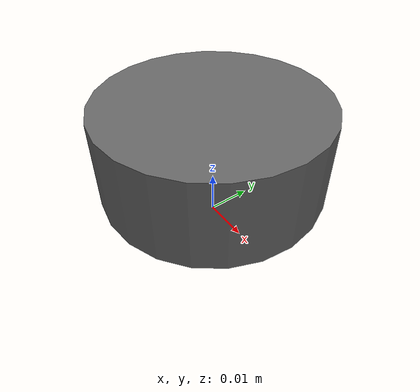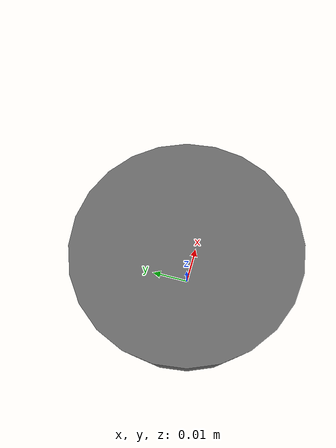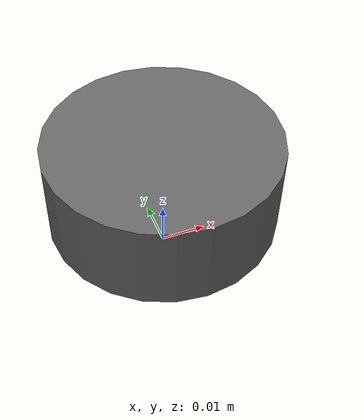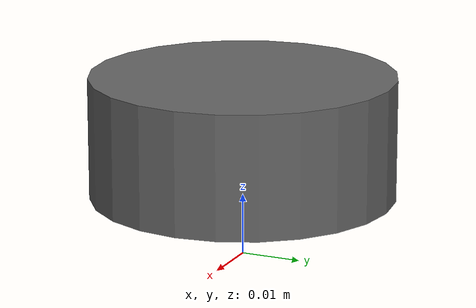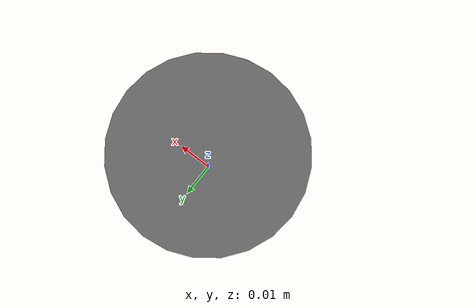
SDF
<?xml version='1.0'?>
<sdf version='1.9'>
  <model name='downward_camera'>
    <pose>0 0 0 0 0 0</pose>
    <self_collide>false</self_collide>
    <static>false</static>
    <link name='camera_link'>
      <inertial>
        <pose>0.03 0.03 0.03 0 0 0</pose>
        <mass>0.050</mass>
        <inertia>
          <ixx>0.00004</ixx>
          <ixy>0</ixy>
          <ixz>0</ixz>
          <iyy>0.00004</iyy>
          <iyz>0</iyz>
          <izz>0.00004</izz>
        </inertia>
      </inertial>
      <visual name='camera_viz'>
        <pose>0 0 0.02 0 0 0</pose>
        <geometry>
          <cylinder>
            <radius>0.025</radius>
            <length>0.020</length>
          </cylinder>
        </geometry>
        <material>
          <ambient>0.4 0.4 0.4</ambient>
          <diffuse>0.4 0.4 0.4</diffuse>
          <specular>0.1 0.1 0.1 1.0</specular>
        </material>
      </visual>
      <collision name='camera_col'>
        <pose>0 0 0.04 0 0 0</pose>
        <geometry>
          <cylinder>
            <radius>0.025</radius>
            <length>0.020</length>
          </cylinder>
        </geometry>
      </collision>
      <sensor name="camera" type="camera">
        <pose degrees="true">0 0 0.02 90 -90 90</pose>
        <camera>
          <horizontal_fov>2.0</horizontal_fov>
          <image>
            <width>1080</width>
            <height>1080</height>
            <format>R8G8B8</format>
          </image>
          <clip>
            <near>0.1</near>   <!-- Objetos más cercanos visibles -->
            <far>100</far>     <!-- Objetos más lejanos visibles -->
          </clip>
          <!-- Campo de visión (FOV) -->
          <!-- 1.047 radianes ≈ 60 grados (típico para cámaras) -->
          <horizontal_fov>1.047</horizontal_fov>
        </camera>
        <always_on>1</always_on>
        <update_rate>60</update_rate>
        <visualize>false</visualize>

      </sensor>
    </link>
  </model>
</sdf>
